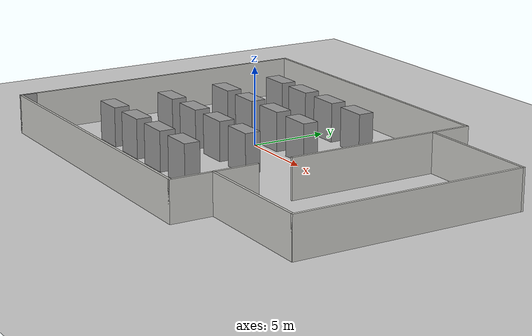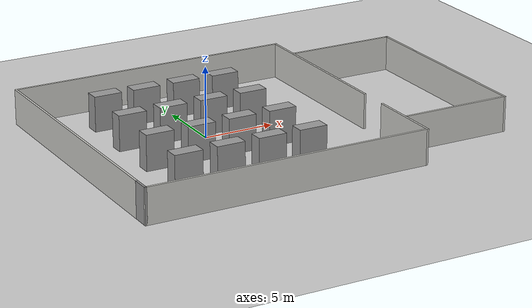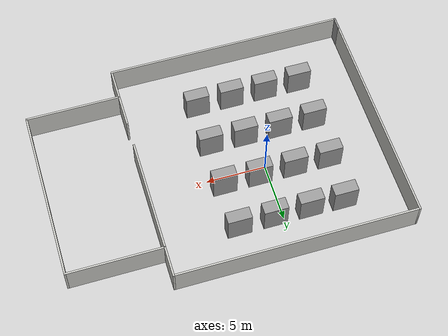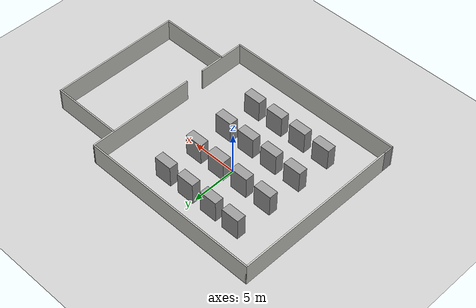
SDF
<sdf version="1.6">
 <world name="default">
  <light name="sun" type="directional">
   <pose>0 0 10 0 -0 0</pose>
   <diffuse>0.8 0.8 0.8 1</diffuse>
   <specular>0.1 0.1 0.1 1</specular>
   <attenuation>
    <range>1000</range>
    <constant>0.9</constant>
    <linear>0.01</linear>
    <quadratic>0.001</quadratic>
   </attenuation>
   <direction>-0.5 0.5 -1</direction>
  </light>
  <model name="ground_plane">
   <static>1</static>
   <link name="link">
    <collision name="collision">
     <geometry><plane><normal>0 0 1</normal><size>100 100</size></plane></geometry>
     <surface><friction><ode><mu>100</mu><mu2>50</mu2></ode></friction></surface>
    </collision>
    <visual name="visual">
     <cast_shadows>0</cast_shadows>
     <geometry><plane><normal>0 0 1</normal><size>100 100</size></plane></geometry>
     <material>
      <script><uri>file://media/materials/scripts/gazebo.material</uri><name>Gazebo/Grey</name></script>
     </material>
    </visual>
   </link>
  </model>
  <gravity>0 0 -9.8</gravity>
  <magnetic_field>6e-06 2.3e-05 -4.2e-05</magnetic_field>
  <atmosphere type="adiabatic"/>
  <physics name="default_physics" default="0" type="ode">
   <max_step_size>0.001</max_step_size>
   <real_time_factor>1</real_time_factor>
   <real_time_update_rate>1000</real_time_update_rate>
  </physics>
  <scene><ambient>0.4 0.4 0.4 1</ambient><background>0.7 0.7 0.7 1</background><shadows>1</shadows></scene>
  <spherical_coordinates>
   <surface_model>EARTH_WGS84</surface_model>
   <latitude_deg>0</latitude_deg>
   <longitude_deg>0</longitude_deg>
   <elevation>0</elevation>
   <heading_deg>0</heading_deg>
  </spherical_coordinates>
  <model name="room">
   <pose>4 -1.4 0 0 -0 0</pose>
   <link name="Wall_10">
    <collision name="Wall_10_Collision">
     <geometry><box><size>8 0.15 2.5</size></box></geometry>
     <pose>0 0 1.25 0 -0 0</pose>
    </collision>
    <visual name="Wall_10_Visual">
     <pose>0 0 1.25 0 -0 0</pose>
     <geometry><box><size>8 0.15 2.5</size></box></geometry>
     <material>
      <script><uri>file://media/materials/scripts/gazebo.material</uri><name>Gazebo/CeilingTiled</name></script>
      <ambient>1 1 1 1</ambient>
     </material>
    </visual>
    <pose>10.0648 -7.24219 0 0 -0 0</pose>
   </link>
   <link name="Wall_11">
    <collision name="Wall_11_Collision">
     <geometry><box><size>14.75 0.15 2.5</size></box></geometry>
     <pose>0 0 1.25 0 -0 0</pose>
    </collision>
    <visual name="Wall_11_Visual">
     <pose>0 0 1.25 0 -0 0</pose>
     <geometry><box><size>14.75 0.15 2.5</size></box></geometry>
     <material>
      <script><uri>file://media/materials/scripts/gazebo.material</uri><name>Gazebo/CeilingTiled</name></script>
      <ambient>1 1 1 1</ambient>
     </material>
    </visual>
    <pose>13.9898 0.057812 0 0 -0 1.5708</pose>
   </link>
   <link name="Wall_12">
    <collision name="Wall_12_Collision">
     <geometry><box><size>8 0.15 2.5</size></box></geometry>
     <pose>0 0 1.25 0 -0 0</pose>
    </collision>
    <visual name="Wall_12_Visual">
     <pose>0 0 1.25 0 -0 0</pose>
     <geometry><box><size>8 0.15 2.5</size></box></geometry>
     <material>
      <script><uri>file://media/materials/scripts/gazebo.material</uri><name>Gazebo/CeilingTiled</name></script>
      <ambient>1 1 1 1</ambient>
     </material>
    </visual>
    <pose>10.0648 7.35781 0 0 -0 3.14159</pose>
   </link>
   <link name="Wall_2">
    <collision name="Wall_2_Collision">
     <geometry><box><size>18.75 0.15 2.5</size></box></geometry>
     <pose>0 0 1.25 0 -0 0</pose>
    </collision>
    <visual name="Wall_2_Visual">
     <pose>0 0 1.25 0 -0 0</pose>
     <geometry><box><size>18.75 0.15 2.5</size></box></geometry>
     <material>
      <script><uri>file://media/materials/scripts/gazebo.material</uri><name>Gazebo/CeilingTiled</name></script>
      <ambient>1 1 1 1</ambient>
     </material>
    </visual>
    <pose>-13.9898 0.55 0 0 -0 1.5708</pose>
   </link>
   <link name="Wall_3">
    <collision name="Wall_3_Collision">
     <geometry><box><size>20.25 0.15 2.5</size></box></geometry>
     <pose>0 0 1.25 0 -0 0</pose>
    </collision>
    <visual name="Wall_3_Visual">
     <pose>0 0 1.25 0 -0 0</pose>
     <geometry><box><size>20.25 0.15 2.5</size></box></geometry>
     <material>
      <script><uri>file://media/materials/scripts/gazebo.material</uri><name>Gazebo/CeilingTiled</name></script>
      <ambient>1 1 1 1</ambient>
     </material>
    </visual>
    <pose>-3.93981 9.85 0 0 -0 0</pose>
   </link>
   <link name="Wall_4">
    <collision name="Wall_4_Collision">
     <geometry><box><size>12.25 0.15 2.5</size></box></geometry>
     <pose>0 0 1.25 0 -0 0</pose>
    </collision>
    <visual name="Wall_4_Visual">
     <pose>0 0 1.25 0 -0 0</pose>
     <geometry><box><size>12.25 0.15 2.5</size></box></geometry>
     <material>
      <script><uri>file://media/materials/scripts/gazebo.material</uri><name>Gazebo/CeilingTiled</name></script>
      <ambient>1 1 1 1</ambient>
     </material>
    </visual>
    <pose>6.11019 3.8 0 0 0 -1.5708</pose>
   </link>
   <link name="Wall_6">
    <collision name="Wall_6_Collision">
     <geometry><box><size>1.25 0.15 2.5</size></box></geometry>
     <pose>0 0 1.25 0 -0 0</pose>
    </collision>
    <visual name="Wall_6_Visual">
     <pose>0 0 1.25 0 -0 0</pose>
     <geometry><box><size>1.25 0.15 2.5</size></box></geometry>
     <material>
      <script><uri>file://media/materials/scripts/gazebo.material</uri><name>Gazebo/Grey</name></script>
      <ambient>1 1 1 1</ambient>
     </material>
    </visual>
    <pose>-13.9898 -9.3 0 0 0 -1.5708</pose>
   </link>
   <link name="Wall_7">
    <collision name="Wall_7_Collision">
     <geometry><box><size>20.25 0.15 2.5</size></box></geometry>
     <pose>0 0 1.25 0 -0 0</pose>
    </collision>
    <visual name="Wall_7_Visual">
     <pose>0 0 1.25 0 -0 0</pose>
     <geometry><box><size>20.25 0.15 2.5</size></box></geometry>
     <material>
      <script><uri>file://media/materials/scripts/gazebo.material</uri><name>Gazebo/CeilingTiled</name></script>
      <ambient>1 1 1 1</ambient>
     </material>
    </visual>
    <pose>-3.93981 -9.85 0 0 -0 0</pose>
   </link>
   <link name="Wall_8">
    <collision name="Wall_8_Collision">
     <geometry><box><size>5.5 0.15 2.5</size></box></geometry>
     <pose>0 0 1.25 0 -0 0</pose>
    </collision>
    <visual name="Wall_8_Visual">
     <pose>0 0 1.25 0 -0 0</pose>
     <geometry><box><size>5.5 0.15 2.5</size></box></geometry>
     <material>
      <script><uri>file://media/materials/scripts/gazebo.material</uri><name>Gazebo/CeilingTiled</name></script>
      <ambient>1 1 1 1</ambient>
     </material>
    </visual>
    <pose>6.11019 -7.175 0 0 -0 1.5708</pose>
   </link>
   <static>1</static>
  </model>
  <model name="huojia0">
   <link name="Wall_0">
    <inertial>
     <mass>1</mass>
     <inertia><ixx>1</ixx><ixy>0</ixy><ixz>0</ixz><iyy>1</iyy><iyz>0</iyz><izz>1</izz></inertia>
    </inertial>
    <visual name="Wall_0_Visual">
     <pose>0 0 1.25 0 -0 0</pose>
     <geometry><box><size>2 1 2.5</size></box></geometry>
     <material>
      <script><uri>file://media/materials/scripts/gazebo.material</uri><name>Gazebo/Grey</name></script>
      <ambient>1 1 1 1</ambient>
      <diffuse>0.7 0.7 0.7 1</diffuse>
      <specular>0.01 0.01 0.01 1</specular>
      <emissive>0 0 0 1</emissive>
      <shader type="vertex"><normal_map>__default__</normal_map></shader>
     </material>
    </visual>
    <collision name="Wall_0_Collision">
     <pose>0 0 1.25 0 -0 0</pose>
     <geometry><box><size>2 1 2.5</size></box></geometry>
     <surface>
      <friction>
       <ode><mu>1</mu><mu2>1</mu2><fdir1>0 0 0</fdir1><slip1>0</slip1><slip2>0</slip2></ode>
       <torsional>
        <coefficient>1</coefficient>
        <patch_radius>0</patch_radius>
        <surface_radius>0</surface_radius>
        <use_patch_radius>1</use_patch_radius>
        <ode><slip>0</slip></ode>
       </torsional>
      </friction>
      <bounce><restitution_coefficient>0</restitution_coefficient><threshold>1e+06</threshold></bounce>
      <contact>
       <collide_without_contact>0</collide_without_contact>
       <collide_without_contact_bitmask>1</collide_without_contact_bitmask>
       <collide_bitmask>1</collide_bitmask>
       <ode>
        <soft_cfm>0</soft_cfm>
        <soft_erp>0.2</soft_erp>
        <kp>1e+13</kp>
        <kd>1</kd>
        <max_vel>0.01</max_vel>
        <min_depth>0</min_depth>
       </ode>
       <bullet>
        <split_impulse>1</split_impulse>
        <split_impulse_penetration_threshold>-0.01</split_impulse_penetration_threshold>
        <soft_cfm>0</soft_cfm>
        <soft_erp>0.2</soft_erp>
        <kp>1e+13</kp>
        <kd>1</kd>
       </bullet>
      </contact>
     </surface>
    </collision>
   </link>
   <link name="Wall_0_clone">
    <pose>2.85587 -0.04589 0 0 -0 0</pose>
    <inertial>
     <mass>1</mass>
     <inertia><ixx>1</ixx><ixy>0</ixy><ixz>0</ixz><iyy>1</iyy><iyz>0</iyz><izz>1</izz></inertia>
    </inertial>
    <visual name="Wall_0_Visual">
     <pose>0 0 1.25 0 -0 0</pose>
     <geometry><box><size>2 1 2.5</size></box></geometry>
     <material>
      <script><uri>file://media/materials/scripts/gazebo.material</uri><name>Gazebo/Grey</name></script>
      <ambient>1 1 1 1</ambient>
      <diffuse>0.7 0.7 0.7 1</diffuse>
      <specular>0.01 0.01 0.01 1</specular>
      <emissive>0 0 0 1</emissive>
      <shader type="vertex"><normal_map>__default__</normal_map></shader>
     </material>
    </visual>
    <collision name="Wall_0_Collision">
     <pose>0 0 1.25 0 -0 0</pose>
     <geometry><box><size>2 1 2.5</size></box></geometry>
     <surface>
      <friction>
       <ode><mu>1</mu><mu2>1</mu2><fdir1>0 0 0</fdir1><slip1>0</slip1><slip2>0</slip2></ode>
       <torsional>
        <coefficient>1</coefficient>
        <patch_radius>0</patch_radius>
        <surface_radius>0</surface_radius>
        <use_patch_radius>1</use_patch_radius>
        <ode><slip>0</slip></ode>
       </torsional>
      </friction>
      <bounce><restitution_coefficient>0</restitution_coefficient><threshold>1e+06</threshold></bounce>
      <contact>
       <collide_without_contact>0</collide_without_contact>
       <collide_without_contact_bitmask>1</collide_without_contact_bitmask>
       <collide_bitmask>1</collide_bitmask>
       <ode>
        <soft_cfm>0</soft_cfm>
        <soft_erp>0.2</soft_erp>
        <kp>1e+13</kp>
        <kd>1</kd>
        <max_vel>0.01</max_vel>
        <min_depth>0</min_depth>
       </ode>
       <bullet>
        <split_impulse>1</split_impulse>
        <split_impulse_penetration_threshold>-0.01</split_impulse_penetration_threshold>
        <soft_cfm>0</soft_cfm>
        <soft_erp>0.2</soft_erp>
        <kp>1e+13</kp>
        <kd>1</kd>
       </bullet>
      </contact>
     </surface>
    </collision>
   </link>
   <link name="Wall_0_clone_0">
    <pose>5.85587 -0.04589 0 0 -0 0</pose>
    <inertial>
     <mass>1</mass>
     <inertia><ixx>1</ixx><ixy>0</ixy><ixz>0</ixz><iyy>1</iyy><iyz>0</iyz><izz>1</izz></inertia>
    </inertial>
    <visual name="Wall_0_Visual">
     <pose>0 0 1.25 0 -0 0</pose>
     <geometry><box><size>2 1 2.5</size></box></geometry>
     <material>
      <script><uri>file://media/materials/scripts/gazebo.material</uri><name>Gazebo/Grey</name></script>
      <ambient>1 1 1 1</ambient>
      <diffuse>0.7 0.7 0.7 1</diffuse>
      <specular>0.01 0.01 0.01 1</specular>
      <emissive>0 0 0 1</emissive>
      <shader type="vertex"><normal_map>__default__</normal_map></shader>
     </material>
    </visual>
    <collision name="Wall_0_Collision">
     <pose>0 0 1.25 0 -0 0</pose>
     <geometry><box><size>2 1 2.5</size></box></geometry>
     <surface>
      <friction>
       <ode><mu>1</mu><mu2>1</mu2><fdir1>0 0 0</fdir1><slip1>0</slip1><slip2>0</slip2></ode>
       <torsional>
        <coefficient>1</coefficient>
        <patch_radius>0</patch_radius>
        <surface_radius>0</surface_radius>
        <use_patch_radius>1</use_patch_radius>
        <ode><slip>0</slip></ode>
       </torsional>
      </friction>
      <bounce><restitution_coefficient>0</restitution_coefficient><threshold>1e+06</threshold></bounce>
      <contact>
       <collide_without_contact>0</collide_without_contact>
       <collide_without_contact_bitmask>1</collide_without_contact_bitmask>
       <collide_bitmask>1</collide_bitmask>
       <ode>
        <soft_cfm>0</soft_cfm>
        <soft_erp>0.2</soft_erp>
        <kp>1e+13</kp>
        <kd>1</kd>
        <max_vel>0.01</max_vel>
        <min_depth>0</min_depth>
       </ode>
       <bullet>
        <split_impulse>1</split_impulse>
        <split_impulse_penetration_threshold>-0.01</split_impulse_penetration_threshold>
        <soft_cfm>0</soft_cfm>
        <soft_erp>0.2</soft_erp>
        <kp>1e+13</kp>
        <kd>1</kd>
       </bullet>
      </contact>
     </surface>
    </collision>
   </link>
   <link name="Wall_0_clone_1">
    <pose>8.85587 -0.04589 0 0 -0 0</pose>
    <inertial>
     <mass>1</mass>
     <inertia><ixx>1</ixx><ixy>0</ixy><ixz>0</ixz><iyy>1</iyy><iyz>0</iyz><izz>1</izz></inertia>
    </inertial>
    <visual name="Wall_0_Visual">
     <pose>0 0 1.25 0 -0 0</pose>
     <geometry><box><size>2 1 2.5</size></box></geometry>
     <material>
      <script><uri>file://media/materials/scripts/gazebo.material</uri><name>Gazebo/Grey</name></script>
      <ambient>1 1 1 1</ambient>
      <diffuse>0.7 0.7 0.7 1</diffuse>
      <specular>0.01 0.01 0.01 1</specular>
      <emissive>0 0 0 1</emissive>
      <shader type="vertex"><normal_map>__default__</normal_map></shader>
     </material>
    </visual>
    <collision name="Wall_0_Collision">
     <pose>0 0 1.25 0 -0 0</pose>
     <geometry><box><size>2 1 2.5</size></box></geometry>
     <surface>
      <friction>
       <ode><mu>1</mu><mu2>1</mu2><fdir1>0 0 0</fdir1><slip1>0</slip1><slip2>0</slip2></ode>
       <torsional>
        <coefficient>1</coefficient>
        <patch_radius>0</patch_radius>
        <surface_radius>0</surface_radius>
        <use_patch_radius>1</use_patch_radius>
        <ode><slip>0</slip></ode>
       </torsional>
      </friction>
      <bounce><restitution_coefficient>0</restitution_coefficient><threshold>1e+06</threshold></bounce>
      <contact>
       <collide_without_contact>0</collide_without_contact>
       <collide_without_contact_bitmask>1</collide_without_contact_bitmask>
       <collide_bitmask>1</collide_bitmask>
       <ode>
        <soft_cfm>0</soft_cfm>
        <soft_erp>0.2</soft_erp>
        <kp>1e+13</kp>
        <kd>1</kd>
        <max_vel>0.01</max_vel>
        <min_depth>0</min_depth>
       </ode>
       <bullet>
        <split_impulse>1</split_impulse>
        <split_impulse_penetration_threshold>-0.01</split_impulse_penetration_threshold>
        <soft_cfm>0</soft_cfm>
        <soft_erp>0.2</soft_erp>
        <kp>1e+13</kp>
        <kd>1</kd>
       </bullet>
      </contact>
     </surface>
    </collision>
   </link>
   <link name="Wall_0_clone_10">
    <pose>5.85587 -12.0459 0 0 -0 0</pose>
    <inertial>
     <mass>1</mass>
     <inertia><ixx>1</ixx><ixy>0</ixy><ixz>0</ixz><iyy>1</iyy><iyz>0</iyz><izz>1</izz></inertia>
    </inertial>
    <visual name="Wall_0_Visual">
     <pose>0 0 1.25 0 -0 0</pose>
     <geometry><box><size>2 1 2.5</size></box></geometry>
     <material>
      <script><uri>file://media/materials/scripts/gazebo.material</uri><name>Gazebo/Grey</name></script>
      <ambient>1 1 1 1</ambient>
      <diffuse>0.7 0.7 0.7 1</diffuse>
      <specular>0.01 0.01 0.01 1</specular>
      <emissive>0 0 0 1</emissive>
      <shader type="vertex"><normal_map>__default__</normal_map></shader>
     </material>
    </visual>
    <collision name="Wall_0_Collision">
     <pose>0 0 1.25 0 -0 0</pose>
     <geometry><box><size>2 1 2.5</size></box></geometry>
     <surface>
      <friction>
       <ode><mu>1</mu><mu2>1</mu2><fdir1>0 0 0</fdir1><slip1>0</slip1><slip2>0</slip2></ode>
       <torsional>
        <coefficient>1</coefficient>
        <patch_radius>0</patch_radius>
        <surface_radius>0</surface_radius>
        <use_patch_radius>1</use_patch_radius>
        <ode><slip>0</slip></ode>
       </torsional>
      </friction>
      <bounce><restitution_coefficient>0</restitution_coefficient><threshold>1e+06</threshold></bounce>
      <contact>
       <collide_without_contact>0</collide_without_contact>
       <collide_without_contact_bitmask>1</collide_without_contact_bitmask>
       <collide_bitmask>1</collide_bitmask>
       <ode>
        <soft_cfm>0</soft_cfm>
        <soft_erp>0.2</soft_erp>
        <kp>1e+13</kp>
        <kd>1</kd>
        <max_vel>0.01</max_vel>
        <min_depth>0</min_depth>
       </ode>
       <bullet>
        <split_impulse>1</split_impulse>
        <split_impulse_penetration_threshold>-0.01</split_impulse_penetration_threshold>
        <soft_cfm>0</soft_cfm>
        <soft_erp>0.2</soft_erp>
        <kp>1e+13</kp>
        <kd>1</kd>
       </bullet>
      </contact>
     </surface>
    </collision>
   </link>
   <link name="Wall_0_clone_11">
    <pose>8.85587 -4.04589 0 0 -0 0</pose>
    <inertial>
     <mass>1</mass>
     <inertia><ixx>1</ixx><ixy>0</ixy><ixz>0</ixz><iyy>1</iyy><iyz>0</iyz><izz>1</izz></inertia>
    </inertial>
    <visual name="Wall_0_Visual">
     <pose>0 0 1.25 0 -0 0</pose>
     <geometry><box><size>2 1 2.5</size></box></geometry>
     <material>
      <script><uri>file://media/materials/scripts/gazebo.material</uri><name>Gazebo/Grey</name></script>
      <ambient>1 1 1 1</ambient>
      <diffuse>0.7 0.7 0.7 1</diffuse>
      <specular>0.01 0.01 0.01 1</specular>
      <emissive>0 0 0 1</emissive>
      <shader type="vertex"><normal_map>__default__</normal_map></shader>
     </material>
    </visual>
    <collision name="Wall_0_Collision">
     <pose>0 0 1.25 0 -0 0</pose>
     <geometry><box><size>2 1 2.5</size></box></geometry>
     <surface>
      <friction>
       <ode><mu>1</mu><mu2>1</mu2><fdir1>0 0 0</fdir1><slip1>0</slip1><slip2>0</slip2></ode>
       <torsional>
        <coefficient>1</coefficient>
        <patch_radius>0</patch_radius>
        <surface_radius>0</surface_radius>
        <use_patch_radius>1</use_patch_radius>
        <ode><slip>0</slip></ode>
       </torsional>
      </friction>
      <bounce><restitution_coefficient>0</restitution_coefficient><threshold>1e+06</threshold></bounce>
      <contact>
       <collide_without_contact>0</collide_without_contact>
       <collide_without_contact_bitmask>1</collide_without_contact_bitmask>
       <collide_bitmask>1</collide_bitmask>
       <ode>
        <soft_cfm>0</soft_cfm>
        <soft_erp>0.2</soft_erp>
        <kp>1e+13</kp>
        <kd>1</kd>
        <max_vel>0.01</max_vel>
        <min_depth>0</min_depth>
       </ode>
       <bullet>
        <split_impulse>1</split_impulse>
        <split_impulse_penetration_threshold>-0.01</split_impulse_penetration_threshold>
        <soft_cfm>0</soft_cfm>
        <soft_erp>0.2</soft_erp>
        <kp>1e+13</kp>
        <kd>1</kd>
       </bullet>
      </contact>
     </surface>
    </collision>
   </link>
   <link name="Wall_0_clone_12">
    <pose>8.85587 -8.04589 0 0 -0 0</pose>
    <inertial>
     <mass>1</mass>
     <inertia><ixx>1</ixx><ixy>0</ixy><ixz>0</ixz><iyy>1</iyy><iyz>0</iyz><izz>1</izz></inertia>
    </inertial>
    <visual name="Wall_0_Visual">
     <pose>0 0 1.25 0 -0 0</pose>
     <geometry><box><size>2 1 2.5</size></box></geometry>
     <material>
      <script><uri>file://media/materials/scripts/gazebo.material</uri><name>Gazebo/Grey</name></script>
      <ambient>1 1 1 1</ambient>
      <diffuse>0.7 0.7 0.7 1</diffuse>
      <specular>0.01 0.01 0.01 1</specular>
      <emissive>0 0 0 1</emissive>
      <shader type="vertex"><normal_map>__default__</normal_map></shader>
     </material>
    </visual>
    <collision name="Wall_0_Collision">
     <pose>0 0 1.25 0 -0 0</pose>
     <geometry><box><size>2 1 2.5</size></box></geometry>
     <surface>
      <friction>
       <ode><mu>1</mu><mu2>1</mu2><fdir1>0 0 0</fdir1><slip1>0</slip1><slip2>0</slip2></ode>
       <torsional>
        <coefficient>1</coefficient>
        <patch_radius>0</patch_radius>
        <surface_radius>0</surface_radius>
        <use_patch_radius>1</use_patch_radius>
        <ode><slip>0</slip></ode>
       </torsional>
      </friction>
      <bounce><restitution_coefficient>0</restitution_coefficient><threshold>1e+06</threshold></bounce>
      <contact>
       <collide_without_contact>0</collide_without_contact>
       <collide_without_contact_bitmask>1</collide_without_contact_bitmask>
       <collide_bitmask>1</collide_bitmask>
       <ode>
        <soft_cfm>0</soft_cfm>
        <soft_erp>0.2</soft_erp>
        <kp>1e+13</kp>
        <kd>1</kd>
        <max_vel>0.01</max_vel>
        <min_depth>0</min_depth>
       </ode>
       <bullet>
        <split_impulse>1</split_impulse>
        <split_impulse_penetration_threshold>-0.01</split_impulse_penetration_threshold>
        <soft_cfm>0</soft_cfm>
        <soft_erp>0.2</soft_erp>
        <kp>1e+13</kp>
        <kd>1</kd>
       </bullet>
      </contact>
     </surface>
    </collision>
   </link>
   <link name="Wall_0_clone_13">
    <pose>8.85587 -12.0459 0 0 -0 0</pose>
    <inertial>
     <mass>1</mass>
     <inertia><ixx>1</ixx><ixy>0</ixy><ixz>0</ixz><iyy>1</iyy><iyz>0</iyz><izz>1</izz></inertia>
    </inertial>
    <visual name="Wall_0_Visual">
     <pose>0 0 1.25 0 -0 0</pose>
     <geometry><box><size>2 1 2.5</size></box></geometry>
     <material>
      <script><uri>file://media/materials/scripts/gazebo.material</uri><name>Gazebo/Grey</name></script>
      <ambient>1 1 1 1</ambient>
      <diffuse>0.7 0.7 0.7 1</diffuse>
      <specular>0.01 0.01 0.01 1</specular>
      <emissive>0 0 0 1</emissive>
      <shader type="vertex"><normal_map>__default__</normal_map></shader>
     </material>
    </visual>
    <collision name="Wall_0_Collision">
     <pose>0 0 1.25 0 -0 0</pose>
     <geometry><box><size>2 1 2.5</size></box></geometry>
     <surface>
      <friction>
       <ode><mu>1</mu><mu2>1</mu2><fdir1>0 0 0</fdir1><slip1>0</slip1><slip2>0</slip2></ode>
       <torsional>
        <coefficient>1</coefficient>
        <patch_radius>0</patch_radius>
        <surface_radius>0</surface_radius>
        <use_patch_radius>1</use_patch_radius>
        <ode><slip>0</slip></ode>
       </torsional>
      </friction>
      <bounce><restitution_coefficient>0</restitution_coefficient><threshold>1e+06</threshold></bounce>
      <contact>
       <collide_without_contact>0</collide_without_contact>
       <collide_without_contact_bitmask>1</collide_without_contact_bitmask>
       <collide_bitmask>1</collide_bitmask>
       <ode>
        <soft_cfm>0</soft_cfm>
        <soft_erp>0.2</soft_erp>
        <kp>1e+13</kp>
        <kd>1</kd>
        <max_vel>0.01</max_vel>
        <min_depth>0</min_depth>
       </ode>
       <bullet>
        <split_impulse>1</split_impulse>
        <split_impulse_penetration_threshold>-0.01</split_impulse_penetration_threshold>
        <soft_cfm>0</soft_cfm>
        <soft_erp>0.2</soft_erp>
        <kp>1e+13</kp>
        <kd>1</kd>
       </bullet>
      </contact>
     </surface>
    </collision>
   </link>
   <link name="Wall_0_clone_2">
    <pose>-0.14413 -4.04589 0 0 -0 0</pose>
    <inertial>
     <mass>1</mass>
     <inertia><ixx>1</ixx><ixy>0</ixy><ixz>0</ixz><iyy>1</iyy><iyz>0</iyz><izz>1</izz></inertia>
    </inertial>
    <visual name="Wall_0_Visual">
     <pose>0 0 1.25 0 -0 0</pose>
     <geometry><box><size>2 1 2.5</size></box></geometry>
     <material>
      <script><uri>file://media/materials/scripts/gazebo.material</uri><name>Gazebo/Grey</name></script>
      <ambient>1 1 1 1</ambient>
      <diffuse>0.7 0.7 0.7 1</diffuse>
      <specular>0.01 0.01 0.01 1</specular>
      <emissive>0 0 0 1</emissive>
      <shader type="vertex"><normal_map>__default__</normal_map></shader>
     </material>
    </visual>
    <collision name="Wall_0_Collision">
     <pose>0 0 1.25 0 -0 0</pose>
     <geometry><box><size>2 1 2.5</size></box></geometry>
     <surface>
      <friction>
       <ode><mu>1</mu><mu2>1</mu2><fdir1>0 0 0</fdir1><slip1>0</slip1><slip2>0</slip2></ode>
       <torsional>
        <coefficient>1</coefficient>
        <patch_radius>0</patch_radius>
        <surface_radius>0</surface_radius>
        <use_patch_radius>1</use_patch_radius>
        <ode><slip>0</slip></ode>
       </torsional>
      </friction>
      <bounce><restitution_coefficient>0</restitution_coefficient><threshold>1e+06</threshold></bounce>
      <contact>
       <collide_without_contact>0</collide_without_contact>
       <collide_without_contact_bitmask>1</collide_without_contact_bitmask>
       <collide_bitmask>1</collide_bitmask>
       <ode>
        <soft_cfm>0</soft_cfm>
        <soft_erp>0.2</soft_erp>
        <kp>1e+13</kp>
        <kd>1</kd>
        <max_vel>0.01</max_vel>
        <min_depth>0</min_depth>
       </ode>
       <bullet>
        <split_impulse>1</split_impulse>
        <split_impulse_penetration_threshold>-0.01</split_impulse_penetration_threshold>
        <soft_cfm>0</soft_cfm>
        <soft_erp>0.2</soft_erp>
        <kp>1e+13</kp>
        <kd>1</kd>
       </bullet>
      </contact>
     </surface>
    </collision>
   </link>
   <link name="Wall_0_clone_3">
    <pose>-0.14413 -8.04589 0 0 -0 0</pose>
    <inertial>
     <mass>1</mass>
     <inertia><ixx>1</ixx><ixy>0</ixy><ixz>0</ixz><iyy>1</iyy><iyz>0</iyz><izz>1</izz></inertia>
    </inertial>
    <visual name="Wall_0_Visual">
     <pose>0 0 1.25 0 -0 0</pose>
     <geometry><box><size>2 1 2.5</size></box></geometry>
     <material>
      <script><uri>file://media/materials/scripts/gazebo.material</uri><name>Gazebo/Grey</name></script>
      <ambient>1 1 1 1</ambient>
      <diffuse>0.7 0.7 0.7 1</diffuse>
      <specular>0.01 0.01 0.01 1</specular>
      <emissive>0 0 0 1</emissive>
      <shader type="vertex"><normal_map>__default__</normal_map></shader>
     </material>
    </visual>
    <collision name="Wall_0_Collision">
     <pose>0 0 1.25 0 -0 0</pose>
     <geometry><box><size>2 1 2.5</size></box></geometry>
     <surface>
      <friction>
       <ode><mu>1</mu><mu2>1</mu2><fdir1>0 0 0</fdir1><slip1>0</slip1><slip2>0</slip2></ode>
       <torsional>
        <coefficient>1</coefficient>
        <patch_radius>0</patch_radius>
        <surface_radius>0</surface_radius>
        <use_patch_radius>1</use_patch_radius>
        <ode><slip>0</slip></ode>
       </torsional>
      </friction>
      <bounce><restitution_coefficient>0</restitution_coefficient><threshold>1e+06</threshold></bounce>
      <contact>
       <collide_without_contact>0</collide_without_contact>
       <collide_without_contact_bitmask>1</collide_without_contact_bitmask>
       <collide_bitmask>1</collide_bitmask>
       <ode>
        <soft_cfm>0</soft_cfm>
        <soft_erp>0.2</soft_erp>
        <kp>1e+13</kp>
        <kd>1</kd>
        <max_vel>0.01</max_vel>
        <min_depth>0</min_depth>
       </ode>
       <bullet>
        <split_impulse>1</split_impulse>
        <split_impulse_penetration_threshold>-0.01</split_impulse_penetration_threshold>
        <soft_cfm>0</soft_cfm>
        <soft_erp>0.2</soft_erp>
        <kp>1e+13</kp>
        <kd>1</kd>
       </bullet>
      </contact>
     </surface>
    </collision>
   </link>
   <link name="Wall_0_clone_4">
    <pose>-0.14413 -12.0459 0 0 -0 0</pose>
    <inertial>
     <mass>1</mass>
     <inertia><ixx>1</ixx><ixy>0</ixy><ixz>0</ixz><iyy>1</iyy><iyz>0</iyz><izz>1</izz></inertia>
    </inertial>
    <visual name="Wall_0_Visual">
     <pose>0 0 1.25 0 -0 0</pose>
     <geometry><box><size>2 1 2.5</size></box></geometry>
     <material>
      <script><uri>file://media/materials/scripts/gazebo.material</uri><name>Gazebo/Grey</name></script>
      <ambient>1 1 1 1</ambient>
      <diffuse>0.7 0.7 0.7 1</diffuse>
      <specular>0.01 0.01 0.01 1</specular>
      <emissive>0 0 0 1</emissive>
      <shader type="vertex"><normal_map>__default__</normal_map></shader>
     </material>
    </visual>
    <collision name="Wall_0_Collision">
     <pose>0 0 1.25 0 -0 0</pose>
     <geometry><box><size>2 1 2.5</size></box></geometry>
     <surface>
      <friction>
       <ode><mu>1</mu><mu2>1</mu2><fdir1>0 0 0</fdir1><slip1>0</slip1><slip2>0</slip2></ode>
       <torsional>
        <coefficient>1</coefficient>
        <patch_radius>0</patch_radius>
        <surface_radius>0</surface_radius>
        <use_patch_radius>1</use_patch_radius>
        <ode><slip>0</slip></ode>
       </torsional>
      </friction>
      <bounce><restitution_coefficient>0</restitution_coefficient><threshold>1e+06</threshold></bounce>
      <contact>
       <collide_without_contact>0</collide_without_contact>
       <collide_without_contact_bitmask>1</collide_without_contact_bitmask>
       <collide_bitmask>1</collide_bitmask>
       <ode>
        <soft_cfm>0</soft_cfm>
        <soft_erp>0.2</soft_erp>
        <kp>1e+13</kp>
        <kd>1</kd>
        <max_vel>0.01</max_vel>
        <min_depth>0</min_depth>
       </ode>
       <bullet>
        <split_impulse>1</split_impulse>
        <split_impulse_penetration_threshold>-0.01</split_impulse_penetration_threshold>
        <soft_cfm>0</soft_cfm>
        <soft_erp>0.2</soft_erp>
        <kp>1e+13</kp>
        <kd>1</kd>
       </bullet>
      </contact>
     </surface>
    </collision>
   </link>
   <link name="Wall_0_clone_5">
    <pose>2.85587 -4.04589 0 0 -0 0</pose>
    <inertial>
     <mass>1</mass>
     <inertia><ixx>1</ixx><ixy>0</ixy><ixz>0</ixz><iyy>1</iyy><iyz>0</iyz><izz>1</izz></inertia>
    </inertial>
    <visual name="Wall_0_Visual">
     <pose>0 0 1.25 0 -0 0</pose>
     <geometry><box><size>2 1 2.5</size></box></geometry>
     <material>
      <script><uri>file://media/materials/scripts/gazebo.material</uri><name>Gazebo/Grey</name></script>
      <ambient>1 1 1 1</ambient>
      <diffuse>0.7 0.7 0.7 1</diffuse>
      <specular>0.01 0.01 0.01 1</specular>
      <emissive>0 0 0 1</emissive>
      <shader type="vertex"><normal_map>__default__</normal_map></shader>
     </material>
    </visual>
    <collision name="Wall_0_Collision">
     <pose>0 0 1.25 0 -0 0</pose>
     <geometry><box><size>2 1 2.5</size></box></geometry>
     <surface>
      <friction>
       <ode><mu>1</mu><mu2>1</mu2><fdir1>0 0 0</fdir1><slip1>0</slip1><slip2>0</slip2></ode>
       <torsional>
        <coefficient>1</coefficient>
        <patch_radius>0</patch_radius>
        <surface_radius>0</surface_radius>
        <use_patch_radius>1</use_patch_radius>
        <ode><slip>0</slip></ode>
       </torsional>
      </friction>
      <bounce><restitution_coefficient>0</restitution_coefficient><threshold>1e+06</threshold></bounce>
      <contact>
       <collide_without_contact>0</collide_without_contact>
       <collide_without_contact_bitmask>1</collide_without_contact_bitmask>
       <collide_bitmask>1</collide_bitmask>
       <ode>
        <soft_cfm>0</soft_cfm>
        <soft_erp>0.2</soft_erp>
        <kp>1e+13</kp>
        <kd>1</kd>
        <max_vel>0.01</max_vel>
        <min_depth>0</min_depth>
       </ode>
       <bullet>
        <split_impulse>1</split_impulse>
        <split_impulse_penetration_threshold>-0.01</split_impulse_penetration_threshold>
        <soft_cfm>0</soft_cfm>
        <soft_erp>0.2</soft_erp>
        <kp>1e+13</kp>
        <kd>1</kd>
       </bullet>
      </contact>
     </surface>
    </collision>
   </link>
   <link name="Wall_0_clone_6">
    <pose>2.85587 -8.04589 0 0 -0 0</pose>
    <inertial>
     <mass>1</mass>
     <inertia><ixx>1</ixx><ixy>0</ixy><ixz>0</ixz><iyy>1</iyy><iyz>0</iyz><izz>1</izz></inertia>
    </inertial>
    <visual name="Wall_0_Visual">
     <pose>0 0 1.25 0 -0 0</pose>
     <geometry><box><size>2 1 2.5</size></box></geometry>
     <material>
      <script><uri>file://media/materials/scripts/gazebo.material</uri><name>Gazebo/Grey</name></script>
      <ambient>1 1 1 1</ambient>
      <diffuse>0.7 0.7 0.7 1</diffuse>
      <specular>0.01 0.01 0.01 1</specular>
      <emissive>0 0 0 1</emissive>
      <shader type="vertex"><normal_map>__default__</normal_map></shader>
     </material>
    </visual>
    <collision name="Wall_0_Collision">
     <pose>0 0 1.25 0 -0 0</pose>
     <geometry><box><size>2 1 2.5</size></box></geometry>
     <surface>
      <friction>
       <ode><mu>1</mu><mu2>1</mu2><fdir1>0 0 0</fdir1><slip1>0</slip1><slip2>0</slip2></ode>
       <torsional>
        <coefficient>1</coefficient>
        <patch_radius>0</patch_radius>
        <surface_radius>0</surface_radius>
        <use_patch_radius>1</use_patch_radius>
        <ode><slip>0</slip></ode>
       </torsional>
      </friction>
      <bounce><restitution_coefficient>0</restitution_coefficient><threshold>1e+06</threshold></bounce>
      <contact>
       <collide_without_contact>0</collide_without_contact>
       <collide_without_contact_bitmask>1</collide_without_contact_bitmask>
       <collide_bitmask>1</collide_bitmask>
       <ode>
        <soft_cfm>0</soft_cfm>
        <soft_erp>0.2</soft_erp>
        <kp>1e+13</kp>
        <kd>1</kd>
        <max_vel>0.01</max_vel>
        <min_depth>0</min_depth>
       </ode>
       <bullet>
        <split_impulse>1</split_impulse>
        <split_impulse_penetration_threshold>-0.01</split_impulse_penetration_threshold>
        <soft_cfm>0</soft_cfm>
        <soft_erp>0.2</soft_erp>
        <kp>1e+13</kp>
        <kd>1</kd>
       </bullet>
      </contact>
     </surface>
    </collision>
   </link>
   <link name="Wall_0_clone_7">
    <pose>2.85587 -12.0459 0 0 -0 0</pose>
    <inertial>
     <mass>1</mass>
     <inertia><ixx>1</ixx><ixy>0</ixy><ixz>0</ixz><iyy>1</iyy><iyz>0</iyz><izz>1</izz></inertia>
    </inertial>
    <visual name="Wall_0_Visual">
     <pose>0 0 1.25 0 -0 0</pose>
     <geometry><box><size>2 1 2.5</size></box></geometry>
     <material>
      <script><uri>file://media/materials/scripts/gazebo.material</uri><name>Gazebo/Grey</name></script>
      <ambient>1 1 1 1</ambient>
      <diffuse>0.7 0.7 0.7 1</diffuse>
      <specular>0.01 0.01 0.01 1</specular>
      <emissive>0 0 0 1</emissive>
      <shader type="vertex"><normal_map>__default__</normal_map></shader>
     </material>
    </visual>
    <collision name="Wall_0_Collision">
     <pose>0 0 1.25 0 -0 0</pose>
     <geometry><box><size>2 1 2.5</size></box></geometry>
     <surface>
      <friction>
       <ode><mu>1</mu><mu2>1</mu2><fdir1>0 0 0</fdir1><slip1>0</slip1><slip2>0</slip2></ode>
       <torsional>
        <coefficient>1</coefficient>
        <patch_radius>0</patch_radius>
        <surface_radius>0</surface_radius>
        <use_patch_radius>1</use_patch_radius>
        <ode><slip>0</slip></ode>
       </torsional>
      </friction>
      <bounce><restitution_coefficient>0</restitution_coefficient><threshold>1e+06</threshold></bounce>
      <contact>
       <collide_without_contact>0</collide_without_contact>
       <collide_without_contact_bitmask>1</collide_without_contact_bitmask>
       <collide_bitmask>1</collide_bitmask>
       <ode>
        <soft_cfm>0</soft_cfm>
        <soft_erp>0.2</soft_erp>
        <kp>1e+13</kp>
        <kd>1</kd>
        <max_vel>0.01</max_vel>
        <min_depth>0</min_depth>
       </ode>
       <bullet>
        <split_impulse>1</split_impulse>
        <split_impulse_penetration_threshold>-0.01</split_impulse_penetration_threshold>
        <soft_cfm>0</soft_cfm>
        <soft_erp>0.2</soft_erp>
        <kp>1e+13</kp>
        <kd>1</kd>
       </bullet>
      </contact>
     </surface>
    </collision>
   </link>
   <link name="Wall_0_clone_8">
    <pose>5.85587 -4.04589 0 0 -0 0</pose>
    <inertial>
     <mass>1</mass>
     <inertia><ixx>1</ixx><ixy>0</ixy><ixz>0</ixz><iyy>1</iyy><iyz>0</iyz><izz>1</izz></inertia>
    </inertial>
    <visual name="Wall_0_Visual">
     <pose>0 0 1.25 0 -0 0</pose>
     <geometry><box><size>2 1 2.5</size></box></geometry>
     <material>
      <script><uri>file://media/materials/scripts/gazebo.material</uri><name>Gazebo/Grey</name></script>
      <ambient>1 1 1 1</ambient>
      <diffuse>0.7 0.7 0.7 1</diffuse>
      <specular>0.01 0.01 0.01 1</specular>
      <emissive>0 0 0 1</emissive>
      <shader type="vertex"><normal_map>__default__</normal_map></shader>
     </material>
    </visual>
    <collision name="Wall_0_Collision">
     <pose>0 0 1.25 0 -0 0</pose>
     <geometry><box><size>2 1 2.5</size></box></geometry>
     <surface>
      <friction>
       <ode><mu>1</mu><mu2>1</mu2><fdir1>0 0 0</fdir1><slip1>0</slip1><slip2>0</slip2></ode>
       <torsional>
        <coefficient>1</coefficient>
        <patch_radius>0</patch_radius>
        <surface_radius>0</surface_radius>
        <use_patch_radius>1</use_patch_radius>
        <ode><slip>0</slip></ode>
       </torsional>
      </friction>
      <bounce><restitution_coefficient>0</restitution_coefficient><threshold>1e+06</threshold></bounce>
      <contact>
       <collide_without_contact>0</collide_without_contact>
       <collide_without_contact_bitmask>1</collide_without_contact_bitmask>
       <collide_bitmask>1</collide_bitmask>
       <ode>
        <soft_cfm>0</soft_cfm>
        <soft_erp>0.2</soft_erp>
        <kp>1e+13</kp>
        <kd>1</kd>
        <max_vel>0.01</max_vel>
        <min_depth>0</min_depth>
       </ode>
       <bullet>
        <split_impulse>1</split_impulse>
        <split_impulse_penetration_threshold>-0.01</split_impulse_penetration_threshold>
        <soft_cfm>0</soft_cfm>
        <soft_erp>0.2</soft_erp>
        <kp>1e+13</kp>
        <kd>1</kd>
       </bullet>
      </contact>
     </surface>
    </collision>
   </link>
   <link name="Wall_0_clone_9">
    <pose>5.85587 -8.04589 0 0 -0 0</pose>
    <inertial>
     <mass>1</mass>
     <inertia><ixx>1</ixx><ixy>0</ixy><ixz>0</ixz><iyy>1</iyy><iyz>0</iyz><izz>1</izz></inertia>
    </inertial>
    <visual name="Wall_0_Visual">
     <pose>0 0 1.25 0 -0 0</pose>
     <geometry><box><size>2 1 2.5</size></box></geometry>
     <material>
      <script><uri>file://media/materials/scripts/gazebo.material</uri><name>Gazebo/Grey</name></script>
      <ambient>1 1 1 1</ambient>
      <diffuse>0.7 0.7 0.7 1</diffuse>
      <specular>0.01 0.01 0.01 1</specular>
      <emissive>0 0 0 1</emissive>
      <shader type="vertex"><normal_map>__default__</normal_map></shader>
     </material>
    </visual>
    <collision name="Wall_0_Collision">
     <pose>0 0 1.25 0 -0 0</pose>
     <geometry><box><size>2 1 2.5</size></box></geometry>
     <surface>
      <friction>
       <ode><mu>1</mu><mu2>1</mu2><fdir1>0 0 0</fdir1><slip1>0</slip1><slip2>0</slip2></ode>
       <torsional>
        <coefficient>1</coefficient>
        <patch_radius>0</patch_radius>
        <surface_radius>0</surface_radius>
        <use_patch_radius>1</use_patch_radius>
        <ode><slip>0</slip></ode>
       </torsional>
      </friction>
      <bounce><restitution_coefficient>0</restitution_coefficient><threshold>1e+06</threshold></bounce>
      <contact>
       <collide_without_contact>0</collide_without_contact>
       <collide_without_contact_bitmask>1</collide_without_contact_bitmask>
       <collide_bitmask>1</collide_bitmask>
       <ode>
        <soft_cfm>0</soft_cfm>
        <soft_erp>0.2</soft_erp>
        <kp>1e+13</kp>
        <kd>1</kd>
        <max_vel>0.01</max_vel>
        <min_depth>0</min_depth>
       </ode>
       <bullet>
        <split_impulse>1</split_impulse>
        <split_impulse_penetration_threshold>-0.01</split_impulse_penetration_threshold>
        <soft_cfm>0</soft_cfm>
        <soft_erp>0.2</soft_erp>
        <kp>1e+13</kp>
        <kd>1</kd>
       </bullet>
      </contact>
     </surface>
    </collision>
   </link>
   <static>1</static>
   <pose>-5 5 0 0 -0 0</pose>
  </model>
 </world>
</sdf>
